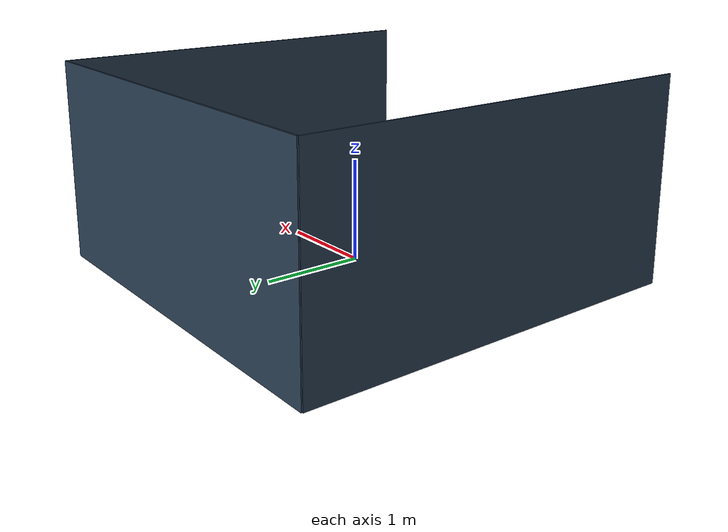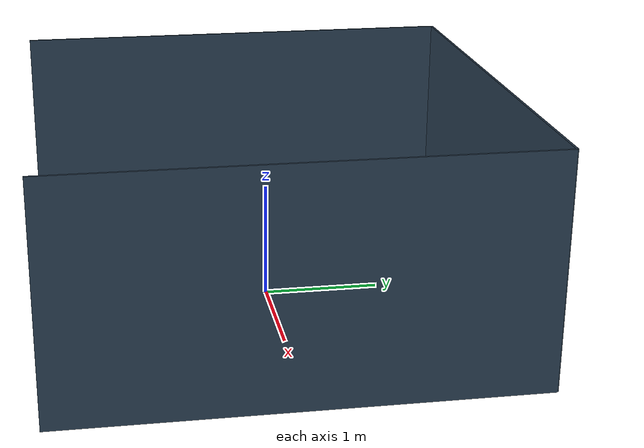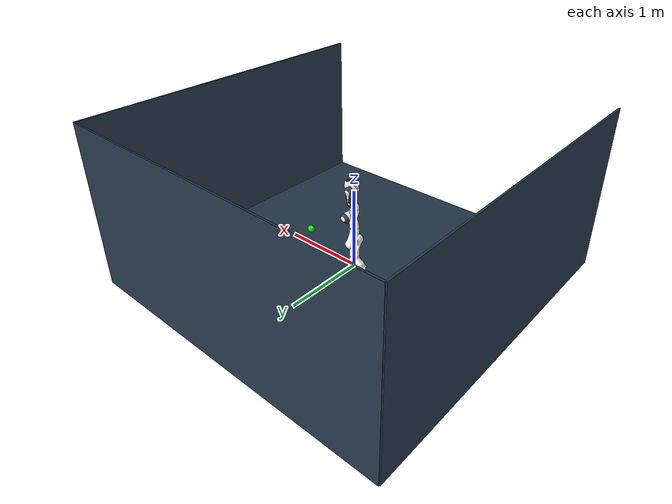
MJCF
<mujoco model="panda scene">
  <include file="panda_nohand.xml"/>

  <statistic center="0.3 0 0.35" extent="0.8" meansize="0.05"/>

  <visual>
    <headlight diffuse="0.6 0.6 0.6" ambient="0.1 0.1 0.1" specular="0 0 0"/>
    <global azimuth="120" elevation="-20"/>
    <!-- offheight="192" offwidth="640" -->
  </visual>

  <asset>
    <texture name="grid" type="2d" builtin="checker" rgb1=".2 .3 .4" rgb2=".1 0.15 0.2" width="512" height="512"
      mark="cross" markrgb=".8 .8 .8"/>
    <material name="grid" texture="grid" texrepeat="1 1" texuniform="true"/>
  </asset>

  <worldbody>
    <light pos="0 0 1.0" dir="1 0 -1" directional="true"/>
    <light pos="0 0 1.0" dir="-1 0 -1" directional="true"/>
    <geom name="floor" size="2 2 0.2" type="plane" material="grid"/>
    <geom name="wall1" type="box" size="2 0.01 1" pos="0 2 0.9" material="grid"/>
    <geom name="wall2" type="box" size="0.01 2 1" pos="-2 0 0.9" material="grid"/>
    <geom name="wall3" type="box" size="0.01 2 1" pos="2 0 0.9" material="grid"/>

    <body name="target" pos="0.5 0 .5" quat="0 1 0 0" mocap="true">
      <site type="sphere" size="0.01" rgba="0 0 1 0" group="1" name="target_site"/>
    </body>

    <body name="target_for_reach" pos="0.5 0.2 0.4" quat="0 1 0 0" mocap="true" >
      <site type="sphere" size="0.04" rgba="0 1.0 0 1" group="1" name="target_for_reach_site"/>
      <geom type="sphere" size="0.04" rgba="0 1.0 0 1" group="1" name="target_for_reach_site"/>
    </body>
    <!-- Ground plane so objects don't fall infinitely -->

    <!-- Vertical wall positioned at X=2, Y=0, spanning 2m high and 2m wide -->
  </worldbody>
</mujoco>

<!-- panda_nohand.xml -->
<mujoco model="panda nohand">
  <compiler angle="radian" meshdir="assets" autolimits="true"/>

  <option integrator="implicitfast"/>

  <default>
    <default class="panda">
      <joint range="-2.8973 2.8973"/>
      <default class="panda/visual">
        <geom type="mesh" contype="0" conaffinity="0" group="2"/>
      </default>
      <default class="panda/collision">
        <geom type="mesh" group="3"/>
      </default>
      <default class="position_actuation">
        <default class="big_joint">
          <position kp="2000" kv="200"/>
        </default>
        <default class="small_joint">
          <position kp="500" kv="50"/>
        </default>
      </default>
    </default>
  </default>

  <asset>
    <material name="white" rgba="1 1 1 1"/>
    <material name="off_white" rgba="0.901961 0.921569 0.929412 1"/>
    <material name="dark_grey" rgba="0.25 0.25 0.25 1"/>
    <material name="green" rgba="0 1 0 1"/>
    <material name="light_blue" rgba="0.039216 0.541176 0.780392 1"/>

    <!-- Collision meshes -->
    <mesh name="link0_c" file="link0.stl"/>
    <mesh name="link1_c" file="link1.stl"/>
    <mesh name="link2_c" file="link2.stl"/>
    <mesh name="link3_c" file="link3.stl"/>
    <mesh name="link4_c" file="link4.stl"/>
    <mesh name="link5_c0" file="link5_collision_0.obj"/>
    <mesh name="link5_c1" file="link5_collision_1.obj"/>
    <mesh name="link5_c2" file="link5_collision_2.obj"/>
    <mesh name="link6_c" file="link6.stl"/>
    <mesh name="link7_c" file="link7.stl"/>

    <!-- Visual meshes -->
    <mesh file="link0_0.obj"/>
    <mesh file="link0_1.obj"/>
    <mesh file="link0_2.obj"/>
    <mesh file="link0_3.obj"/>
    <mesh file="link0_4.obj"/>
    <mesh file="link0_5.obj"/>
    <mesh file="link0_7.obj"/>
    <mesh file="link0_8.obj"/>
    <mesh file="link0_9.obj"/>
    <mesh file="link0_10.obj"/>
    <mesh file="link0_11.obj"/>
    <mesh file="link1.obj"/>
    <mesh file="link2.obj"/>
    <mesh file="link3_0.obj"/>
    <mesh file="link3_1.obj"/>
    <mesh file="link3_2.obj"/>
    <mesh file="link3_3.obj"/>
    <mesh file="link4_0.obj"/>
    <mesh file="link4_1.obj"/>
    <mesh file="link4_2.obj"/>
    <mesh file="link4_3.obj"/>
    <mesh file="link5_0.obj"/>
    <mesh file="link5_1.obj"/>
    <mesh file="link5_2.obj"/>
    <mesh file="link6_0.obj"/>
    <mesh file="link6_1.obj"/>
    <mesh file="link6_2.obj"/>
    <mesh file="link6_3.obj"/>
    <mesh file="link6_4.obj"/>
    <mesh file="link6_5.obj"/>
    <mesh file="link6_6.obj"/>
    <mesh file="link6_7.obj"/>
    <mesh file="link6_8.obj"/>
    <mesh file="link6_9.obj"/>
    <mesh file="link6_10.obj"/>
    <mesh file="link6_11.obj"/>
    <mesh file="link6_12.obj"/>
    <mesh file="link6_13.obj"/>
    <mesh file="link6_14.obj"/>
    <mesh file="link6_15.obj"/>
    <mesh file="link6_16.obj"/>
    <mesh file="link7_0.obj"/>
    <mesh file="link7_1.obj"/>
    <mesh file="link7_2.obj"/>
    <mesh file="link7_3.obj"/>
    <mesh file="link7_4.obj"/>
    <mesh file="link7_5.obj"/>
    <mesh file="link7_6.obj"/>
    <mesh file="link7_7.obj"/>
  </asset>

  <worldbody>
    <body name="link0" childclass="panda">
      <inertial mass="0.629769" pos="-0.041018 -0.00014 0.049974"
        fullinertia="0.00315 0.00388 0.004285 8.2904e-7 0.00015 8.2299e-6"/>
      <geom mesh="link0_0" material="off_white" class="panda/visual"/>
      <geom mesh="link0_1" material="dark_grey" class="panda/visual"/>
      <geom mesh="link0_2" material="off_white" class="panda/visual"/>
      <geom mesh="link0_3" material="dark_grey" class="panda/visual"/>
      <geom mesh="link0_4" material="off_white" class="panda/visual"/>
      <geom mesh="link0_5" material="dark_grey" class="panda/visual"/>
      <geom mesh="link0_7" material="white" class="panda/visual"/>
      <geom mesh="link0_8" material="white" class="panda/visual"/>
      <geom mesh="link0_9" material="dark_grey" class="panda/visual"/>
      <geom mesh="link0_10" material="off_white" class="panda/visual"/>
      <geom mesh="link0_11" material="white" class="panda/visual"/>
      <geom mesh="link0_c" class="panda/collision"/>
      <body name="link1" pos="0 0 0.333">
        <inertial mass="4.970684" pos="0.003875 0.002081 -0.04762"
          fullinertia="0.70337 0.70661 0.0091170 -0.00013900 0.0067720 0.019169"/>
        <joint name="joint1"/>
        <geom material="white" mesh="link1" class="panda/visual"/>
        <geom mesh="link1_c" class="panda/collision"/>
        <body name="link2" quat="1 -1 0 0">
          <inertial mass="0.646926" pos="-0.003141 -0.02872 0.003495"
            fullinertia="0.0079620 2.8110e-2 2.5995e-2 -3.925e-3 1.0254e-2 7.04e-4"/>
          <joint name="joint2" range="-1.7628 1.7628"/>
          <geom material="white" mesh="link2" class="panda/visual"/>
          <geom mesh="link2_c" class="panda/collision"/>
          <body name="link3" pos="0 -0.316 0" quat="1 1 0 0">
            <joint name="joint3"/>
            <inertial mass="3.228604" pos="2.7518e-2 3.9252e-2 -6.6502e-2"
              fullinertia="3.7242e-2 3.6155e-2 1.083e-2 -4.761e-3 -1.1396e-2 -1.2805e-2"/>
            <geom mesh="link3_0" material="white" class="panda/visual"/>
            <geom mesh="link3_1" material="white" class="panda/visual"/>
            <geom mesh="link3_2" material="white" class="panda/visual"/>
            <geom mesh="link3_3" material="dark_grey" class="panda/visual"/>
            <geom mesh="link3_c" class="panda/collision"/>
            <body name="link4" pos="0.0825 0 0" quat="1 1 0 0">
              <inertial mass="3.587895" pos="-5.317e-2 1.04419e-1 2.7454e-2"
                fullinertia="2.5853e-2 1.9552e-2 2.8323e-2 7.796e-3 -1.332e-3 8.641e-3"/>
              <joint name="joint4" range="-3.0718 -0.0698"/>
              <geom mesh="link4_0" material="white" class="panda/visual"/>
              <geom mesh="link4_1" material="white" class="panda/visual"/>
              <geom mesh="link4_2" material="dark_grey" class="panda/visual"/>
              <geom mesh="link4_3" material="white" class="panda/visual"/>
              <geom mesh="link4_c" class="panda/collision"/>
              <body name="link5" pos="-0.0825 0.384 0" quat="1 -1 0 0">
                <inertial mass="1.225946" pos="-1.1953e-2 4.1065e-2 -3.8437e-2"
                  fullinertia="3.5549e-2 2.9474e-2 8.627e-3 -2.117e-3 -4.037e-3 2.29e-4"/>
                <joint name="joint5"/>
                <geom mesh="link5_0" material="dark_grey" class="panda/visual"/>
                <geom mesh="link5_1" material="white" class="panda/visual"/>
                <geom mesh="link5_2" material="white" class="panda/visual"/>
                <geom mesh="link5_c0" class="panda/collision"/>
                <geom mesh="link5_c1" class="panda/collision"/>
                <geom mesh="link5_c2" class="panda/collision"/>
                <body name="link6" quat="1 1 0 0">
                  <inertial mass="1.666555" pos="6.0149e-2 -1.4117e-2 -1.0517e-2"
                    fullinertia="1.964e-3 4.354e-3 5.433e-3 1.09e-4 -1.158e-3 3.41e-4"/>
                  <joint name="joint6" range="-0.0175 3.7525"/>
                  <geom mesh="link6_0" material="off_white" class="panda/visual"/>
                  <geom mesh="link6_1" material="white" class="panda/visual"/>
                  <geom mesh="link6_2" material="dark_grey" class="panda/visual"/>
                  <geom mesh="link6_3" material="white" class="panda/visual"/>
                  <geom mesh="link6_4" material="white" class="panda/visual"/>
                  <geom mesh="link6_5" material="white" class="panda/visual"/>
                  <geom mesh="link6_6" material="white" class="panda/visual"/>
                  <geom mesh="link6_7" material="light_blue" class="panda/visual"/>
                  <geom mesh="link6_8" material="light_blue" class="panda/visual"/>
                  <geom mesh="link6_9" material="dark_grey" class="panda/visual"/>
                  <geom mesh="link6_10" material="dark_grey" class="panda/visual"/>
                  <geom mesh="link6_11" material="white" class="panda/visual"/>
                  <geom mesh="link6_12" material="green" class="panda/visual"/>
                  <geom mesh="link6_13" material="white" class="panda/visual"/>
                  <geom mesh="link6_14" material="dark_grey" class="panda/visual"/>
                  <geom mesh="link6_15" material="dark_grey" class="panda/visual"/>
                  <geom mesh="link6_16" material="white" class="panda/visual"/>
                  <geom mesh="link6_c" class="panda/collision"/>
                  <body name="link7" pos="0.088 0 0" quat="1 1 0 0">
                    <inertial mass="7.35522e-01" pos="1.0517e-2 -4.252e-3 6.1597e-2"
                      fullinertia="1.2516e-2 1.0027e-2 4.815e-3 -4.28e-4 -1.196e-3 -7.41e-4"/>
                    <joint name="joint7"/>
                    <geom mesh="link7_0" material="white" class="panda/visual"/>
                    <geom mesh="link7_1" material="dark_grey" class="panda/visual"/>
                    <geom mesh="link7_2" material="dark_grey" class="panda/visual"/>
                    <geom mesh="link7_3" material="dark_grey" class="panda/visual"/>
                    <geom mesh="link7_4" material="dark_grey" class="panda/visual"/>
                    <geom mesh="link7_5" material="dark_grey" class="panda/visual"/>
                    <geom mesh="link7_6" material="dark_grey" class="panda/visual"/>
                    <geom mesh="link7_7" material="white" class="panda/visual"/>
                    <geom mesh="link7_c" class="panda/collision"/>
                    <body name="attachment" pos="0 0 0.1" quat="0.3826834 0 0 0.9238795">
                      <site name="attachment_site" rgba="1 0 0 0" pos="0 0 0.04" size="0.01" group="1" quat="0 0 0 1"/>
                      <!--Add a camera to the end effector-->
                      <camera name="end_effector_camera" pos="0.3 0.2 -0.4" zaxis="0.5 0.5 -1" mode="track"/>
                    </body>
                  </body>
                </body>
              </body>
            </body>
          </body>
        </body>
      </body>
    </body>
    <camera name="side_fixed_camera" pos="0.6 -1 0.5" zaxis="0 -1 0" mode="fixed"/>
    <camera name="forward_fixed_camera" pos="1.5 0 0.5" euler="1.57 1.57 0" mode="fixed"/>
  </worldbody>

  <actuator>
    <position class="big_joint" name="joint1" joint="joint1" forcerange="-87 87" ctrlrange="-2.8973 2.8973"/>
    <position class="big_joint" name="joint2" joint="joint2" forcerange="-87 87" ctrlrange="-1.7628 1.7628"/>
    <position class="big_joint" name="joint3" joint="joint3" forcerange="-87 87" ctrlrange="-2.8973 2.8973"/>
    <position class="big_joint" name="joint4" joint="joint4" forcerange="-87 87" ctrlrange="-3.0718 -0.0698"/>
    <position class="small_joint" name="joint5" joint="joint5" forcerange="-12 12" ctrlrange="-2.8973 2.8973"/>
    <position class="small_joint" name="joint6" joint="joint6" forcerange="-12 12" ctrlrange="-0.0175 3.7525"/>
    <position class="small_joint" name="joint7" joint="joint7" forcerange="-12 12" ctrlrange="-2.8973 2.8973"/>
  </actuator>

  <keyframe>
    <key name="home" qpos="0 0 0 -1.57079 0 1.57079 -0.7853" ctrl="0 0 0 -1.57079 0 1.57079 -0.7853"/>
  </keyframe>
</mujoco>
